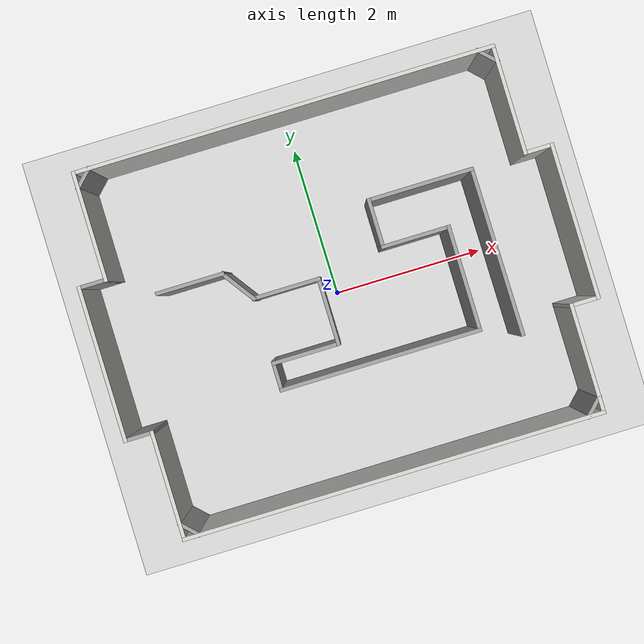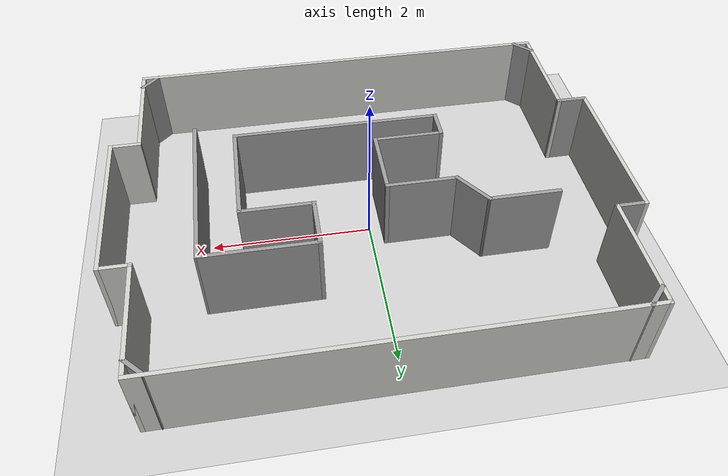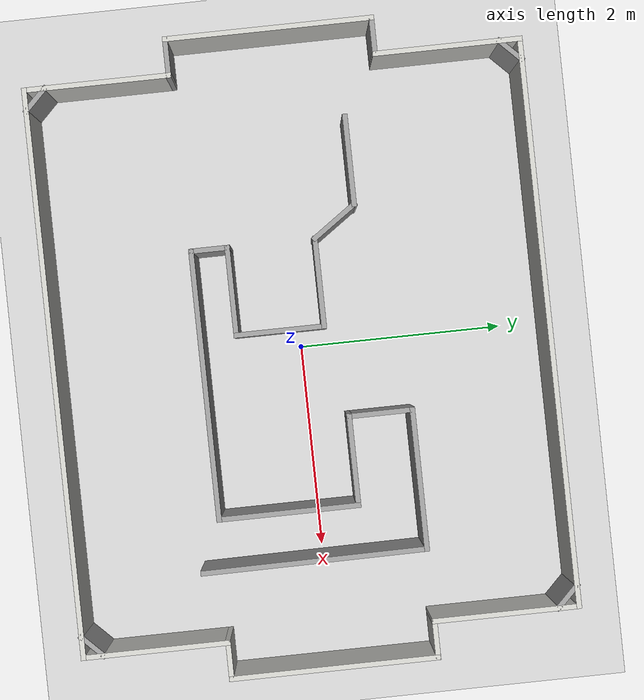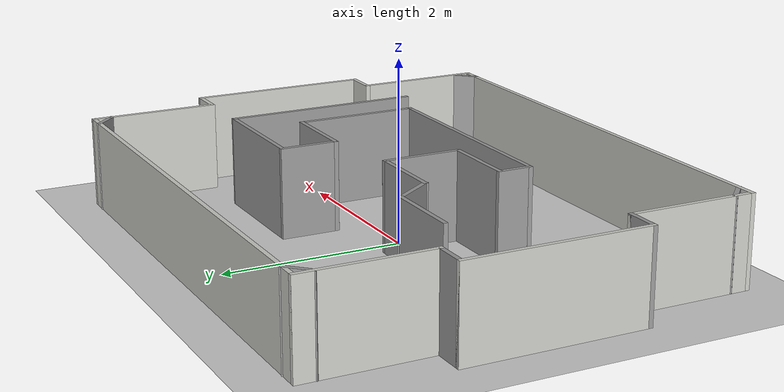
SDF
<sdf version="1.6">
 <world name="default">
  <light name="sun" type="directional">
   <pose>0 0 10 0 -0 0</pose>
   <diffuse>0.8 0.8 0.8 1</diffuse>
   <specular>0.2 0.2 0.2 1</specular>
   <attenuation>
    <range>1000</range>
    <constant>0.9</constant>
    <linear>0.01</linear>
    <quadratic>0.001</quadratic>
   </attenuation>
   <direction>-0.5 0.1 -0.9</direction>
  </light>
  <model name="ground_plane">
   <static>1</static>
   <link name="link">
    <collision name="collision">
     <geometry><plane><normal>0 0 1</normal><size>100 100</size></plane></geometry>
     <surface><friction><ode><mu>100</mu><mu2>50</mu2></ode></friction></surface>
    </collision>
    <visual name="visual">
     <cast_shadows>0</cast_shadows>
     <geometry><plane><normal>0 0 1</normal><size>100 100</size></plane></geometry>
     <material>
      <script><uri>file://media/materials/scripts/gazebo.material</uri><name>Gazebo/Grey</name></script>
     </material>
    </visual>
   </link>
  </model>
  <gravity>0 0 -9.8</gravity>
  <magnetic_field>6e-06 2.3e-05 -4.2e-05</magnetic_field>
  <atmosphere type="adiabatic"/>
  <physics name="default_physics" default="0" type="ode">
   <max_step_size>0.001</max_step_size>
   <real_time_factor>1</real_time_factor>
   <real_time_update_rate>1000</real_time_update_rate>
  </physics>
  <scene><ambient>0.4 0.4 0.4 1</ambient><background>0.7 0.7 0.7 1</background><shadows>1</shadows></scene>
  <spherical_coordinates>
   <surface_model>EARTH_WGS84</surface_model>
   <latitude_deg>0</latitude_deg>
   <longitude_deg>0</longitude_deg>
   <elevation>0</elevation>
   <heading_deg>0</heading_deg>
  </spherical_coordinates>
  <model name="RG-Arena">
   <pose>0.016586 0.00176 0 0 -0 0</pose>
   <link name="Wall_36">
    <collision name="Wall_36_Collision">
     <geometry><box><size>5.55 0.05 1</size></box></geometry>
     <pose>0 0 0.5 0 -0 0</pose>
    </collision>
    <visual name="Wall_36_Visual">
     <pose>0 0 0.5 0 -0 0</pose>
     <geometry><box><size>5.55 0.05 1</size></box></geometry>
     <material>
      <script><uri>file://media/materials/scripts/gazebo.material</uri><name>Gazebo/CeilingTiled</name></script>
      <ambient>1 1 1 1</ambient>
     </material>
     <meta><layer>0</layer></meta>
    </visual>
    <pose>0 -2.4 0 0 -0 0</pose>
   </link>
   <link name="Wall_38">
    <collision name="Wall_38_Collision">
     <geometry><box><size>1.45 0.05 1</size></box></geometry>
     <pose>0 0 0.5 0 -0 0</pose>
    </collision>
    <visual name="Wall_38_Visual">
     <pose>0 0 0.5 0 -0 0</pose>
     <geometry><box><size>1.45 0.05 1</size></box></geometry>
     <material>
      <script><uri>file://media/materials/scripts/gazebo.material</uri><name>Gazebo/CeilingTiled</name></script>
      <ambient>1 1 1 1</ambient>
     </material>
     <meta><layer>0</layer></meta>
    </visual>
    <pose>-2.75 -1.7 0 0 -0 1.5708</pose>
   </link>
   <link name="Wall_39">
    <collision name="Wall_39_Collision">
     <geometry><box><size>0.4 0.05 1</size></box></geometry>
     <pose>0 0 0.5 0 -0 0</pose>
    </collision>
    <visual name="Wall_39_Visual">
     <pose>0 0 0.5 0 -0 0</pose>
     <geometry><box><size>0.4 0.05 1</size></box></geometry>
     <material>
      <script><uri>file://media/materials/scripts/gazebo.material</uri><name>Gazebo/Grey</name></script>
      <ambient>1 1 1 1</ambient>
     </material>
     <meta><layer>0</layer></meta>
    </visual>
    <pose>-2.925 -1 0 0 -0 3.14159</pose>
   </link>
   <link name="Wall_41">
    <collision name="Wall_41_Collision">
     <geometry><box><size>2.05 0.05 1</size></box></geometry>
     <pose>0 0 0.5 0 -0 0</pose>
    </collision>
    <visual name="Wall_41_Visual">
     <pose>0 0 0.5 0 -0 0</pose>
     <geometry><box><size>2.05 0.05 1</size></box></geometry>
     <material>
      <script><uri>file://media/materials/scripts/gazebo.material</uri><name>Gazebo/CeilingTiled</name></script>
      <ambient>1 1 1 1</ambient>
     </material>
     <meta><layer>0</layer></meta>
    </visual>
    <pose>-3.1 0 0 0 -0 1.5708</pose>
   </link>
   <link name="Wall_42">
    <collision name="Wall_42_Collision">
     <geometry><box><size>0.4 0.05 1</size></box></geometry>
     <pose>0 0 0.5 0 -0 0</pose>
    </collision>
    <visual name="Wall_42_Visual">
     <pose>0 0 0.5 0 -0 0</pose>
     <geometry><box><size>0.4 0.05 1</size></box></geometry>
     <material>
      <script><uri>file://media/materials/scripts/gazebo.material</uri><name>Gazebo/Grey</name></script>
      <ambient>1 1 1 1</ambient>
     </material>
     <meta><layer>0</layer></meta>
    </visual>
    <pose>-2.925 1 0 0 -0 0</pose>
   </link>
   <link name="Wall_43">
    <collision name="Wall_43_Collision">
     <geometry><box><size>1.45 0.05 1</size></box></geometry>
     <pose>0 0 0.5 0 -0 0</pose>
    </collision>
    <visual name="Wall_43_Visual">
     <pose>0 0 0.5 0 -0 0</pose>
     <geometry><box><size>1.45 0.05 1</size></box></geometry>
     <material>
      <script><uri>file://media/materials/scripts/gazebo.material</uri><name>Gazebo/CeilingTiled</name></script>
      <ambient>1 1 1 1</ambient>
     </material>
     <meta><layer>0</layer></meta>
    </visual>
    <pose>-2.75 1.7 0 0 -0 1.5708</pose>
   </link>
   <link name="Wall_44">
    <collision name="Wall_44_Collision">
     <geometry><box><size>5.55 0.05 1</size></box></geometry>
     <pose>0 0 0.5 0 -0 0</pose>
    </collision>
    <visual name="Wall_44_Visual">
     <pose>0 0 0.5 0 -0 0</pose>
     <geometry><box><size>5.55 0.05 1</size></box></geometry>
     <material>
      <script><uri>file://media/materials/scripts/gazebo.material</uri><name>Gazebo/CeilingTiled</name></script>
      <ambient>1 1 1 1</ambient>
     </material>
     <meta><layer>0</layer></meta>
    </visual>
    <pose>0 2.4 0 0 -0 0</pose>
   </link>
   <link name="Wall_45">
    <collision name="Wall_45_Collision">
     <geometry><box><size>1.45 0.05 1</size></box></geometry>
     <pose>0 0 0.5 0 -0 0</pose>
    </collision>
    <visual name="Wall_45_Visual">
     <pose>0 0 0.5 0 -0 0</pose>
     <geometry><box><size>1.45 0.05 1</size></box></geometry>
     <material>
      <script><uri>file://media/materials/scripts/gazebo.material</uri><name>Gazebo/CeilingTiled</name></script>
      <ambient>1 1 1 1</ambient>
     </material>
     <meta><layer>0</layer></meta>
    </visual>
    <pose>2.75 1.7 0 0 -0 -1.5708</pose>
   </link>
   <link name="Wall_46">
    <collision name="Wall_46_Collision">
     <geometry><box><size>0.4 0.05 1</size></box></geometry>
     <pose>0 0 0.5 0 -0 0</pose>
    </collision>
    <visual name="Wall_46_Visual">
     <pose>0 0 0.5 0 -0 0</pose>
     <geometry><box><size>0.4 0.05 1</size></box></geometry>
     <material>
      <script><uri>file://media/materials/scripts/gazebo.material</uri><name>Gazebo/CeilingTiled</name></script>
      <ambient>1 1 1 1</ambient>
     </material>
     <meta><layer>0</layer></meta>
    </visual>
    <pose>2.925 1 0 0 -0 0</pose>
   </link>
   <link name="Wall_47">
    <collision name="Wall_47_Collision">
     <geometry><box><size>2.05 0.05 1</size></box></geometry>
     <pose>0 0 0.5 0 -0 0</pose>
    </collision>
    <visual name="Wall_47_Visual">
     <pose>0 0 0.5 0 -0 0</pose>
     <geometry><box><size>2.05 0.05 1</size></box></geometry>
     <material>
      <script><uri>file://media/materials/scripts/gazebo.material</uri><name>Gazebo/CeilingTiled</name></script>
      <ambient>1 1 1 1</ambient>
     </material>
     <meta><layer>0</layer></meta>
    </visual>
    <pose>3.1 0 0 0 -0 -1.5708</pose>
   </link>
   <link name="Wall_48">
    <collision name="Wall_48_Collision">
     <geometry><box><size>0.4 0.05 1</size></box></geometry>
     <pose>0 0 0.5 0 -0 0</pose>
    </collision>
    <visual name="Wall_48_Visual">
     <pose>0 0 0.5 0 -0 0</pose>
     <geometry><box><size>0.4 0.05 1</size></box></geometry>
     <material>
      <script><uri>file://media/materials/scripts/gazebo.material</uri><name>Gazebo/CeilingTiled</name></script>
      <ambient>1 1 1 1</ambient>
     </material>
     <meta><layer>0</layer></meta>
    </visual>
    <pose>2.925 -1 0 0 -0 3.14159</pose>
   </link>
   <link name="Wall_49">
    <collision name="Wall_49_Collision">
     <geometry><box><size>1.45 0.05 1</size></box></geometry>
     <pose>0 0 0.5 0 -0 0</pose>
    </collision>
    <visual name="Wall_49_Visual">
     <pose>0 0 0.5 0 -0 0</pose>
     <geometry><box><size>1.45 0.05 1</size></box></geometry>
     <material>
      <script><uri>file://media/materials/scripts/gazebo.material</uri><name>Gazebo/CeilingTiled</name></script>
      <ambient>1 1 1 1</ambient>
     </material>
     <meta><layer>0</layer></meta>
    </visual>
    <pose>2.75 -1.7 0 0 -0 -1.5708</pose>
   </link>
   <link name="Wall_54">
    <collision name="Wall_54_Collision">
     <geometry><box><size>0.332843 0.05 1</size></box></geometry>
     <pose>0 0 0.5 0 -0 0</pose>
    </collision>
    <visual name="Wall_54_Visual">
     <pose>0 0 0.5 0 -0 0</pose>
     <geometry><box><size>0.332843 0.05 1</size></box></geometry>
     <material>
      <script><uri>file://media/materials/scripts/gazebo.material</uri><name>Gazebo/Grey</name></script>
      <ambient>1 1 1 1</ambient>
     </material>
     <meta><layer>0</layer></meta>
    </visual>
    <pose>-2.65 2.3 0 0 -0 0.785398</pose>
   </link>
   <link name="Wall_56">
    <collision name="Wall_56_Collision">
     <geometry><box><size>0.332843 0.05 1</size></box></geometry>
     <pose>0 0 0.5 0 -0 0</pose>
    </collision>
    <visual name="Wall_56_Visual">
     <pose>0 0 0.5 0 -0 0</pose>
     <geometry><box><size>0.332843 0.05 1</size></box></geometry>
     <material>
      <script><uri>file://media/materials/scripts/gazebo.material</uri><name>Gazebo/Grey</name></script>
      <ambient>1 1 1 1</ambient>
     </material>
     <meta><layer>0</layer></meta>
    </visual>
    <pose>2.65 2.3 0 0 -0 2.35619</pose>
   </link>
   <link name="Wall_58">
    <collision name="Wall_58_Collision">
     <geometry><box><size>0.332843 0.05 1</size></box></geometry>
     <pose>0 0 0.5 0 -0 0</pose>
    </collision>
    <visual name="Wall_58_Visual">
     <pose>0 0 0.5 0 -0 0</pose>
     <geometry><box><size>0.332843 0.05 1</size></box></geometry>
     <material>
      <script><uri>file://media/materials/scripts/gazebo.material</uri><name>Gazebo/Grey</name></script>
      <ambient>1 1 1 1</ambient>
     </material>
     <meta><layer>0</layer></meta>
    </visual>
    <pose>-2.65 -2.3 0 0 -0 -0.785398</pose>
   </link>
   <link name="Wall_60">
    <collision name="Wall_60_Collision">
     <geometry><box><size>0.332843 0.05 1</size></box></geometry>
     <pose>0 0 0.5 0 -0 0</pose>
    </collision>
    <visual name="Wall_60_Visual">
     <pose>0 0 0.5 0 -0 0</pose>
     <geometry><box><size>0.332843 0.05 1</size></box></geometry>
     <material>
      <script><uri>file://media/materials/scripts/gazebo.material</uri><name>Gazebo/Grey</name></script>
      <ambient>1 1 1 1</ambient>
     </material>
     <meta><layer>0</layer></meta>
    </visual>
    <pose>2.65 -2.3 0 0 -0 0.785398</pose>
   </link>
   <link name="Wall_62">
    <collision name="Wall_62_Collision">
     <geometry><box><size>0.9 0.05 1</size></box></geometry>
     <pose>0 0 0.5 0 -0 0</pose>
    </collision>
    <visual name="Wall_62_Visual">
     <pose>0 0 0.5 0 -0 0</pose>
     <geometry><box><size>0.9 0.05 1</size></box></geometry>
     <material>
      <script><uri>file://media/materials/scripts/gazebo.material</uri><name>Gazebo/Grey</name></script>
      <ambient>1 1 1 1</ambient>
     </material>
     <meta><layer>0</layer></meta>
    </visual>
    <pose>-1.753 0.648 0 0 -0 0</pose>
   </link>
   <link name="Wall_63">
    <collision name="Wall_63_Collision">
     <geometry><box><size>0.551863 0.05 1</size></box></geometry>
     <pose>0 0 0.5 0 -0 0</pose>
    </collision>
    <visual name="Wall_63_Visual">
     <pose>0 0 0.5 0 -0 0</pose>
     <geometry><box><size>0.551863 0.05 1</size></box></geometry>
     <material>
      <script><uri>file://media/materials/scripts/gazebo.material</uri><name>Gazebo/Grey</name></script>
      <ambient>1 1 1 1</ambient>
     </material>
     <meta><layer>0</layer></meta>
    </visual>
    <pose>-1.1835 0.443 0 0 -0 -0.956804</pose>
   </link>
   <link name="Wall_64">
    <collision name="Wall_64_Collision">
     <geometry><box><size>0.900345 0.05 1</size></box></geometry>
     <pose>0 0 0.5 0 -0 0</pose>
    </collision>
    <visual name="Wall_64_Visual">
     <pose>0 0 0.5 0 -0 0</pose>
     <geometry><box><size>0.900345 0.05 1</size></box></geometry>
     <material>
      <script><uri>file://media/materials/scripts/gazebo.material</uri><name>Gazebo/Grey</name></script>
      <ambient>1 1 1 1</ambient>
     </material>
     <meta><layer>0</layer></meta>
    </visual>
    <pose>-0.614 0.238 0 0 -0 0</pose>
   </link>
   <link name="Wall_65">
    <collision name="Wall_65_Collision">
     <geometry><box><size>0.900056 0.05 1</size></box></geometry>
     <pose>0 0 0.5 0 -0 0</pose>
    </collision>
    <visual name="Wall_65_Visual">
     <pose>0 0 0.5 0 -0 0</pose>
     <geometry><box><size>0.900056 0.05 1</size></box></geometry>
     <material>
      <script><uri>file://media/materials/scripts/gazebo.material</uri><name>Gazebo/Grey</name></script>
      <ambient>1 1 1 1</ambient>
     </material>
     <meta><layer>0</layer></meta>
    </visual>
    <pose>-0.189 -0.187 0 0 -0 -1.5708</pose>
   </link>
   <link name="Wall_66">
    <collision name="Wall_66_Collision">
     <geometry><box><size>0.899655 0.05 1</size></box></geometry>
     <pose>0 0 0.5 0 -0 0</pose>
    </collision>
    <visual name="Wall_66_Visual">
     <pose>0 0 0.5 0 -0 0</pose>
     <geometry><box><size>0.899655 0.05 1</size></box></geometry>
     <material>
      <script><uri>file://media/materials/scripts/gazebo.material</uri><name>Gazebo/Grey</name></script>
      <ambient>1 1 1 1</ambient>
     </material>
     <meta><layer>0</layer></meta>
    </visual>
    <pose>-0.614 -0.612 0 0 -0 3.14159</pose>
   </link>
   <link name="Wall_67">
    <collision name="Wall_67_Collision">
     <geometry><box><size>0.400056 0.05 1</size></box></geometry>
     <pose>0 0 0.5 0 -0 0</pose>
    </collision>
    <visual name="Wall_67_Visual">
     <pose>0 0 0.5 0 -0 0</pose>
     <geometry><box><size>0.400056 0.05 1</size></box></geometry>
     <material>
      <script><uri>file://media/materials/scripts/gazebo.material</uri><name>Gazebo/Grey</name></script>
      <ambient>1 1 1 1</ambient>
     </material>
     <meta><layer>0</layer></meta>
    </visual>
    <pose>-1.039 -0.787 0 0 -0 -1.5708</pose>
   </link>
   <link name="Wall_68">
    <collision name="Wall_68_Collision">
     <geometry><box><size>2.65035 0.05 1</size></box></geometry>
     <pose>0 0 0.5 0 -0 0</pose>
    </collision>
    <visual name="Wall_68_Visual">
     <pose>0 0 0.5 0 -0 0</pose>
     <geometry><box><size>2.65035 0.05 1</size></box></geometry>
     <material>
      <script><uri>file://media/materials/scripts/gazebo.material</uri><name>Gazebo/Grey</name></script>
      <ambient>1 1 1 1</ambient>
     </material>
     <meta><layer>0</layer></meta>
    </visual>
    <pose>0.261 -0.962 0 0 -0 0</pose>
   </link>
   <link name="Wall_69">
    <collision name="Wall_69_Collision">
     <geometry><box><size>1.39994 0.05 1</size></box></geometry>
     <pose>0 0 0.5 0 -0 0</pose>
    </collision>
    <visual name="Wall_69_Visual">
     <pose>0 0 0.5 0 -0 0</pose>
     <geometry><box><size>1.39994 0.05 1</size></box></geometry>
     <material>
      <script><uri>file://media/materials/scripts/gazebo.material</uri><name>Gazebo/Grey</name></script>
      <ambient>1 1 1 1</ambient>
     </material>
     <meta><layer>0</layer></meta>
    </visual>
    <pose>1.561 -0.287 0 0 -0 1.5708</pose>
   </link>
   <link name="Wall_70">
    <collision name="Wall_70_Collision">
     <geometry><box><size>0.911 0.05 1</size></box></geometry>
     <pose>0 0 0.5 0 -0 0</pose>
    </collision>
    <visual name="Wall_70_Visual">
     <pose>0 0 0.5 0 -0 0</pose>
     <geometry><box><size>0.911 0.05 1</size></box></geometry>
     <material>
      <script><uri>file://media/materials/scripts/gazebo.material</uri><name>Gazebo/Grey</name></script>
      <ambient>1 1 1 1</ambient>
     </material>
     <meta><layer>0</layer></meta>
    </visual>
    <pose>1.1305 0.388 0 0 -0 3.14159</pose>
   </link>
   <link name="Wall_71">
    <collision name="Wall_71_Collision">
     <geometry><box><size>0.662138 0.05 1</size></box></geometry>
     <pose>0 0 0.5 0 -0 0</pose>
    </collision>
    <visual name="Wall_71_Visual">
     <pose>0 0 0.5 0 -0 0</pose>
     <geometry><box><size>0.662138 0.05 1</size></box></geometry>
     <material>
      <script><uri>file://media/materials/scripts/gazebo.material</uri><name>Gazebo/Grey</name></script>
      <ambient>1 1 1 1</ambient>
     </material>
     <meta><layer>0</layer></meta>
    </visual>
    <pose>0.7 0.694 0 0 -0 1.5708</pose>
   </link>
   <link name="Wall_72">
    <collision name="Wall_72_Collision">
     <geometry><box><size>1.398 0.05 1</size></box></geometry>
     <pose>0 0 0.5 0 -0 0</pose>
    </collision>
    <visual name="Wall_72_Visual">
     <pose>0 0 0.5 0 -0 0</pose>
     <geometry><box><size>1.398 0.05 1</size></box></geometry>
     <material>
      <script><uri>file://media/materials/scripts/gazebo.material</uri><name>Gazebo/Grey</name></script>
      <ambient>1 1 1 1</ambient>
     </material>
     <meta><layer>0</layer></meta>
    </visual>
    <pose>1.374 1 0 0 -0 0</pose>
   </link>
   <link name="Wall_73">
    <collision name="Wall_73_Collision">
     <geometry><box><size>2.21704 0.05 1</size></box></geometry>
     <pose>0 0 0.5 0 -0 0</pose>
    </collision>
    <visual name="Wall_73_Visual">
     <pose>0 0 0.5 0 -0 0</pose>
     <geometry><box><size>2.21704 0.05 1</size></box></geometry>
     <material>
      <script><uri>file://media/materials/scripts/gazebo.material</uri><name>Gazebo/Grey</name></script>
      <ambient>1 1 1 1</ambient>
     </material>
     <meta><layer>0</layer></meta>
    </visual>
    <pose>2.0545 -0.0835 0 0 -0 -1.5648</pose>
   </link>
   <static>1</static>
  </model>
 </world>
</sdf>
